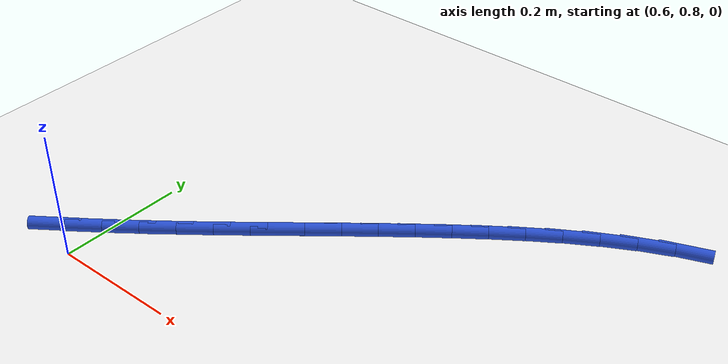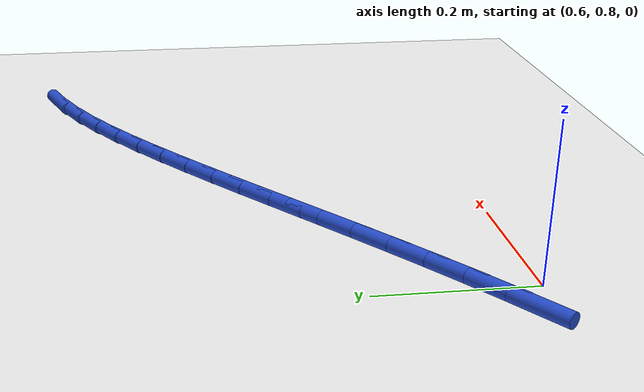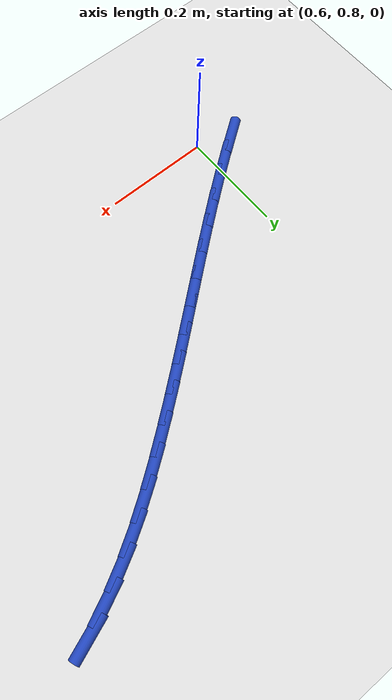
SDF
<sdf version="1.6">
 <world name="default">
  <model name="ground_plane">
   <static>1</static>
   <link name="link">
    <collision name="collision">
     <geometry><plane><normal>0 0 1</normal><size>100 100</size></plane></geometry>
     <surface><friction><ode><mu>100</mu><mu2>50</mu2></ode></friction></surface>
    </collision>
    <visual name="visual">
     <cast_shadows>0</cast_shadows>
     <geometry><plane><normal>0 0 1</normal><size>100 100</size></plane></geometry>
     <material>
      <script><uri>file://media/materials/scripts/gazebo.material</uri><name>Gazebo/WhiteGlow</name></script>
     </material>
    </visual>
   </link>
  </model>
  <model name="line">
   <link name="link_19">
    <pose>0.5390695073839316 0.8263843135459173 0.01 0 1.57 0.6269110289432499</pose>
    <collision name="collision">
     <geometry><cylinder><radius>0.01</radius><length>0.08</length></cylinder></geometry>
    </collision>
    <visual name="visual">
     <material>
      <script><name>Gazebo/Blue</name><uri>file://media/materials/scripts/gazebo.material</uri></script>
     </material>
     <geometry><cylinder><radius>0.01</radius><length>0.08</length></cylinder></geometry>
    </visual>
   </link>
   <link name="link_20">
    <pose>0.5844176152366183 0.8592342222171125 0.01 0 1.57 0.6448340211156136</pose>
    <collision name="collision">
     <geometry><cylinder><radius>0.01</radius><length>0.08</length></cylinder></geometry>
    </collision>
    <visual name="visual">
     <material>
      <script><name>Gazebo/Blue</name><uri>file://media/materials/scripts/gazebo.material</uri></script>
     </material>
     <geometry><cylinder><radius>0.01</radius><length>0.08</length></cylinder></geometry>
    </visual>
   </link>
   <link name="link_21">
    <pose>0.6288590976866557 0.892657983916961 0.01 0 1.57 0.660513087560352</pose>
    <collision name="collision">
     <geometry><cylinder><radius>0.01</radius><length>0.08</length></cylinder></geometry>
    </collision>
    <visual name="visual">
     <material>
      <script><name>Gazebo/Blue</name><uri>file://media/materials/scripts/gazebo.material</uri></script>
     </material>
     <geometry><cylinder><radius>0.01</radius><length>0.08</length></cylinder></geometry>
    </visual>
   </link>
   <link name="link_22">
    <pose>0.6724955030633507 0.9265603020430957 0.01 0 1.57 0.6728731010140023</pose>
    <collision name="collision">
     <geometry><cylinder><radius>0.01</radius><length>0.08</length></cylinder></geometry>
    </collision>
    <visual name="visual">
     <material>
      <script><name>Gazebo/Blue</name><uri>file://media/materials/scripts/gazebo.material</uri></script>
     </material>
     <geometry><cylinder><radius>0.01</radius><length>0.08</length></cylinder></geometry>
    </visual>
   </link>
   <link name="link_23">
    <pose>0.7154747779658049 0.9608122615741427 0.01 0 1.57 0.6818304104870998</pose>
    <collision name="collision">
     <geometry><cylinder><radius>0.01</radius><length>0.08</length></cylinder></geometry>
    </collision>
    <visual name="visual">
     <material>
      <script><name>Gazebo/Blue</name><uri>file://media/materials/scripts/gazebo.material</uri></script>
     </material>
     <geometry><cylinder><radius>0.01</radius><length>0.08</length></cylinder></geometry>
    </visual>
   </link>
   <link name="link_24">
    <pose>0.7579448689931206 0.9952849474887292 0.01 0 1.57 0.6873178105354595</pose>
    <collision name="collision">
     <geometry><cylinder><radius>0.01</radius><length>0.08</length></cylinder></geometry>
    </collision>
    <visual name="visual">
     <material>
      <script><name>Gazebo/Blue</name><uri>file://media/materials/scripts/gazebo.material</uri></script>
     </material>
     <geometry><cylinder><radius>0.01</radius><length>0.08</length></cylinder></geometry>
    </visual>
   </link>
   <link name="link_25">
    <pose>0.8000537227444002 1.0298494447654825 0.01 0 1.57 0.6892822048316357</pose>
    <collision name="collision">
     <geometry><cylinder><radius>0.01</radius><length>0.08</length></cylinder></geometry>
    </collision>
    <visual name="visual">
     <material>
      <script><name>Gazebo/Blue</name><uri>file://media/materials/scripts/gazebo.material</uri></script>
     </material>
     <geometry><cylinder><radius>0.01</radius><length>0.08</length></cylinder></geometry>
    </visual>
   </link>
   <link name="link_26">
    <pose>0.841949285818745 1.0643768383830294 0.01 0 1.57 0.6876832165916238</pose>
    <collision name="collision">
     <geometry><cylinder><radius>0.01</radius><length>0.08</length></cylinder></geometry>
    </collision>
    <visual name="visual">
     <material>
      <script><name>Gazebo/Blue</name><uri>file://media/materials/scripts/gazebo.material</uri></script>
     </material>
     <geometry><cylinder><radius>0.01</radius><length>0.08</length></cylinder></geometry>
    </visual>
   </link>
   <link name="link_27">
    <pose>0.8837795048152572 1.0987382133199963 0.01 0 1.57 0.682492922648018</pose>
    <collision name="collision">
     <geometry><cylinder><radius>0.01</radius><length>0.08</length></cylinder></geometry>
    </collision>
    <visual name="visual">
     <material>
      <script><name>Gazebo/Blue</name><uri>file://media/materials/scripts/gazebo.material</uri></script>
     </material>
     <geometry><cylinder><radius>0.01</radius><length>0.08</length></cylinder></geometry>
    </visual>
   </link>
   <link name="link_28">
    <pose>0.9256923263330391 1.1328046545550108 0.01 0 1.57 0.6736968263718893</pose>
    <collision name="collision">
     <geometry><cylinder><radius>0.01</radius><length>0.08</length></cylinder></geometry>
    </collision>
    <visual name="visual">
     <material>
      <script><name>Gazebo/Blue</name><uri>file://media/materials/scripts/gazebo.material</uri></script>
     </material>
     <geometry><cylinder><radius>0.01</radius><length>0.08</length></cylinder></geometry>
    </visual>
   </link>
   <link name="link_29">
    <pose>0.967835696971193 1.1664472470667 0.01 0 1.57 0.6612961200488173</pose>
    <collision name="collision">
     <geometry><cylinder><radius>0.01</radius><length>0.08</length></cylinder></geometry>
    </collision>
    <visual name="visual">
     <material>
      <script><name>Gazebo/Blue</name><uri>file://media/materials/scripts/gazebo.material</uri></script>
     </material>
     <geometry><cylinder><radius>0.01</radius><length>0.08</length></cylinder></geometry>
    </visual>
   </link>
   <link name="link_30">
    <pose>1.0103575633288198 1.1995370758336896 0.01 0 1.57 0.6452377041006976</pose>
    <collision name="collision">
     <geometry><cylinder><radius>0.01</radius><length>0.08</length></cylinder></geometry>
    </collision>
    <visual name="visual">
     <material>
      <script><name>Gazebo/Blue</name><uri>file://media/materials/scripts/gazebo.material</uri></script>
     </material>
     <geometry><cylinder><radius>0.01</radius><length>0.08</length></cylinder></geometry>
    </visual>
   </link>
   <link name="link_31">
    <pose>1.0534073329053413 1.2319413680178024 0.01 0 1.57 0.6227746840809936</pose>
    <collision name="collision">
     <geometry><cylinder><radius>0.01</radius><length>0.08</length></cylinder></geometry>
    </collision>
    <visual name="visual">
     <material>
      <script><name>Gazebo/Blue</name><uri>file://media/materials/scripts/gazebo.material</uri></script>
     </material>
     <geometry><cylinder><radius>0.01</radius><length>0.08</length></cylinder></geometry>
    </visual>
   </link>
   <link name="link_32">
    <pose>1.097189580303416 1.2633816703567355 0.01 0 1.57 0.5903335036999798</pose>
    <collision name="collision">
     <geometry><cylinder><radius>0.01</radius><length>0.08</length></cylinder></geometry>
    </collision>
    <visual name="visual">
     <material>
      <script><name>Gazebo/Blue</name><uri>file://media/materials/scripts/gazebo.material</uri></script>
     </material>
     <geometry><cylinder><radius>0.01</radius><length>0.08</length></cylinder></geometry>
    </visual>
   </link>
   <link name="link_33">
    <pose>1.1419796177538186 1.2933927318942637 0.01 0 1.57 0.5476907578966869</pose>
    <collision name="collision">
     <geometry><cylinder><radius>0.01</radius><length>0.08</length></cylinder></geometry>
    </collision>
    <visual name="visual">
     <material>
      <script><name>Gazebo/Blue</name><uri>file://media/materials/scripts/gazebo.material</uri></script>
     </material>
     <geometry><cylinder><radius>0.01</radius><length>0.08</length></cylinder></geometry>
    </visual>
   </link>
   <link name="link_34">
    <pose>1.188057392953559 1.3214970607434757 0.01 0 1.57 0.49499603150956734</pose>
    <collision name="collision">
     <geometry><cylinder><radius>0.01</radius><length>0.08</length></cylinder></geometry>
    </collision>
    <visual name="visual">
     <material>
      <script><name>Gazebo/Blue</name><uri>file://media/materials/scripts/gazebo.material</uri></script>
     </material>
     <geometry><cylinder><radius>0.01</radius><length>0.08</length></cylinder></geometry>
    </visual>
   </link>
   <link name="link_35">
    <pose>1.2357028535996448 1.3472171650174578 0.01 0 1.57 0.4326646151121645</pose>
    <collision name="collision">
     <geometry><cylinder><radius>0.01</radius><length>0.08</length></cylinder></geometry>
    </collision>
    <visual name="visual">
     <material>
      <script><name>Gazebo/Blue</name><uri>file://media/materials/scripts/gazebo.material</uri></script>
     </material>
     <geometry><cylinder><radius>0.01</radius><length>0.08</length></cylinder></geometry>
    </visual>
   </link>
   <link name="link_36">
    <pose>1.2851959473890853 1.3700755528292987 0.01 0 1.57 0.3615094735967324</pose>
    <collision name="collision">
     <geometry><cylinder><radius>0.01</radius><length>0.08</length></cylinder></geometry>
    </collision>
    <visual name="visual">
     <material>
      <script><name>Gazebo/Blue</name><uri>file://media/materials/scripts/gazebo.material</uri></script>
     </material>
     <geometry><cylinder><radius>0.01</radius><length>0.08</length></cylinder></geometry>
    </visual>
   </link>
  </model>
 </world>
</sdf>
